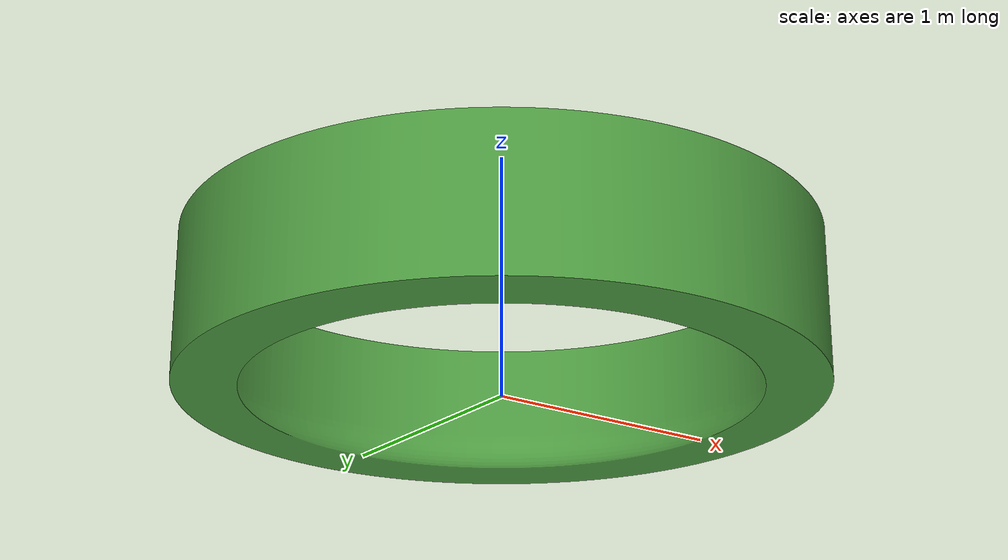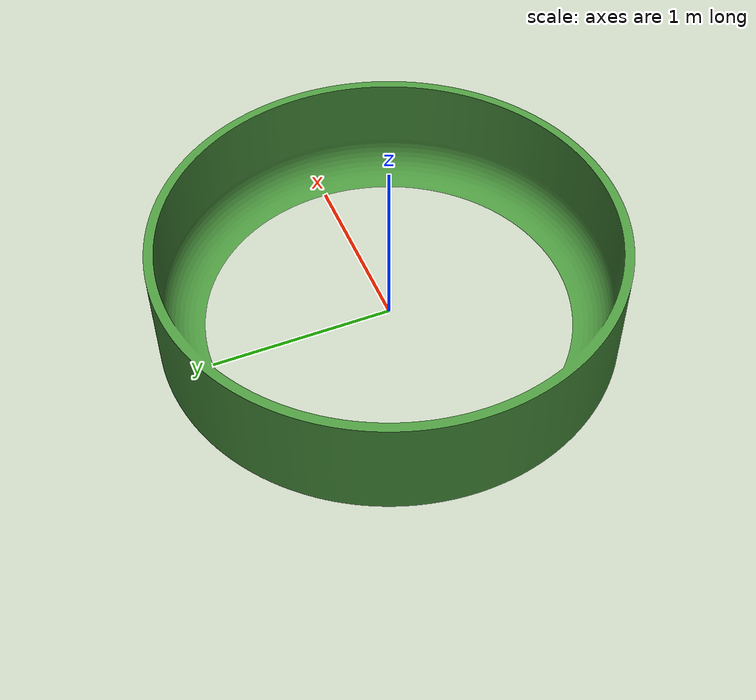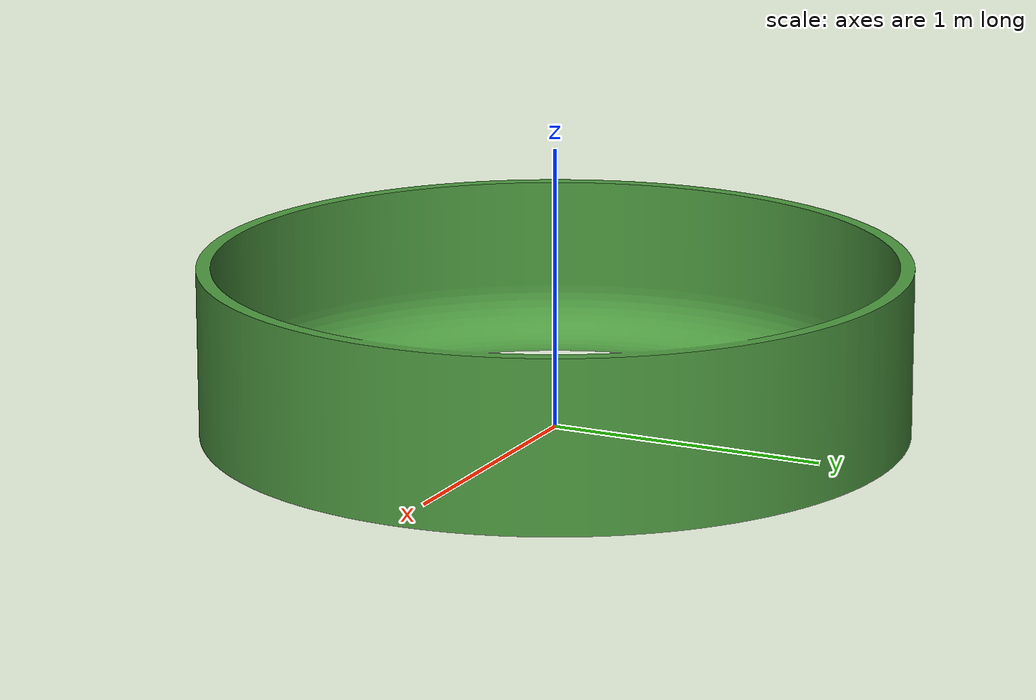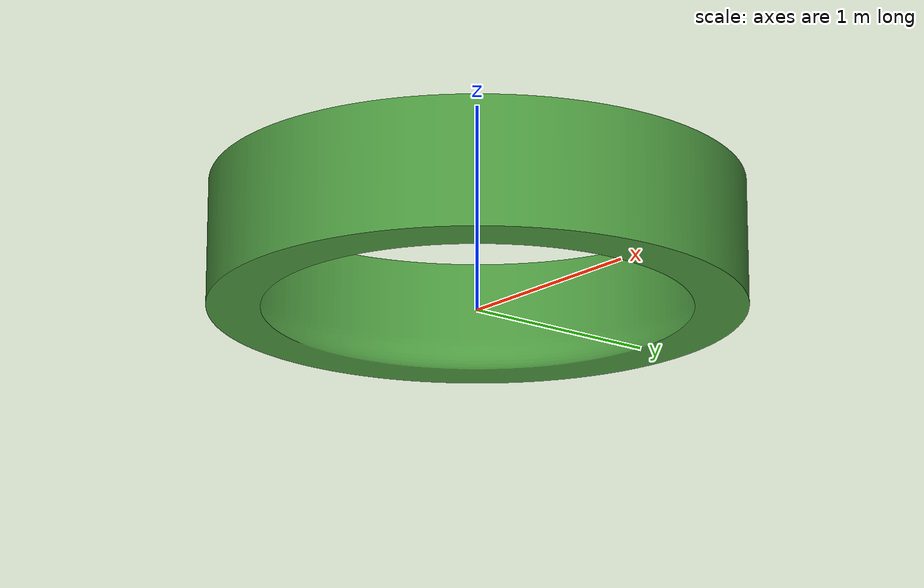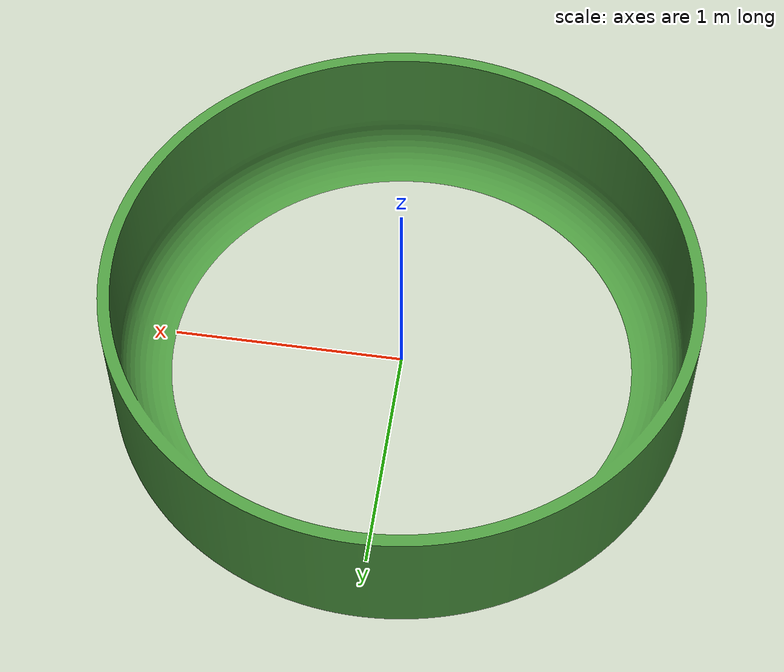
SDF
<?xml version="1.0"?>
<sdf version="1.5">
  <model name="whiskeye_arena">
    <static>true</static>
    <link name="main">
      <visual name="visual">
        <pose>0 0 0 0 0 0</pose>
		<geometry>
			<mesh>
				<uri>model://whiskeye_arena/mesh/whiskeye_arena_600_600_sweep.dae</uri>
			</mesh>
		</geometry>
        <material>
          <script>
            <name>Gazebo/Grass</name>
          </script>
        </material>
      </visual>
      <collision name="collision">
        <pose>0 0 0 0 0 0</pose>
		<geometry>
			<mesh>
				<uri>model://whiskeye_arena/mesh/whiskeye_arena_600_600_sweep.dae</uri>
			</mesh>
		</geometry>
        <surface>
          <friction>
            <ode>
              <mu>0.1</mu>
              <mu2>0.1</mu2>
            </ode>
          </friction>
        </surface>
      </collision>
    </link>
  </model>
</sdf>
